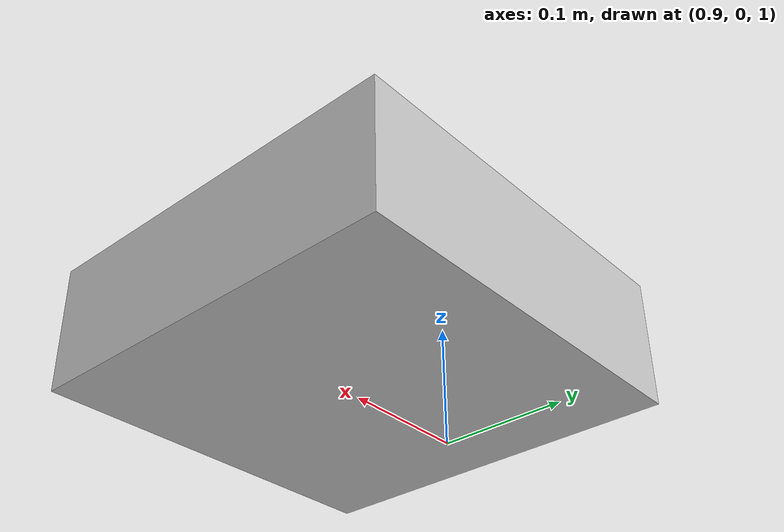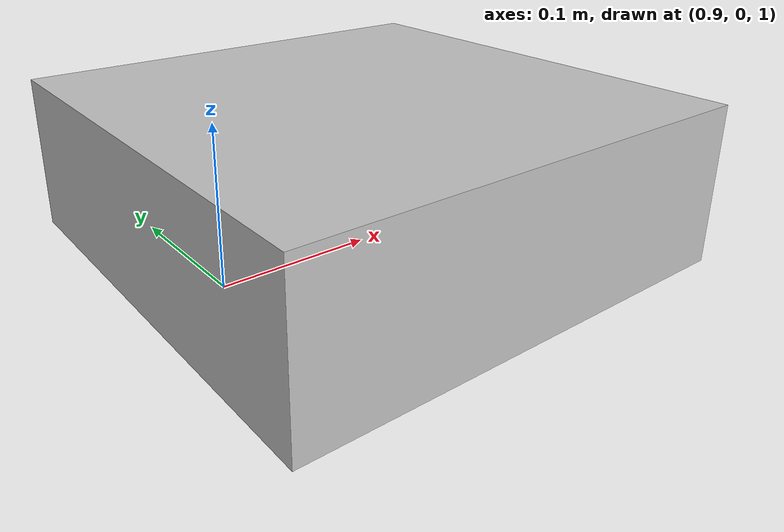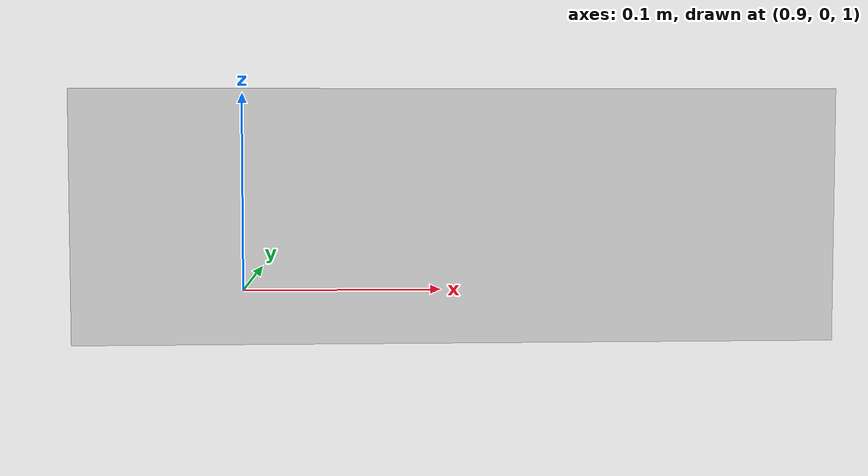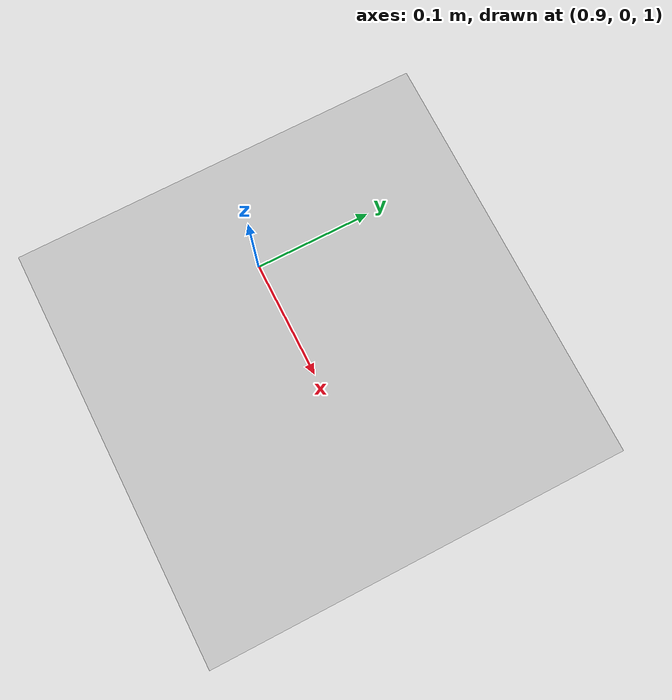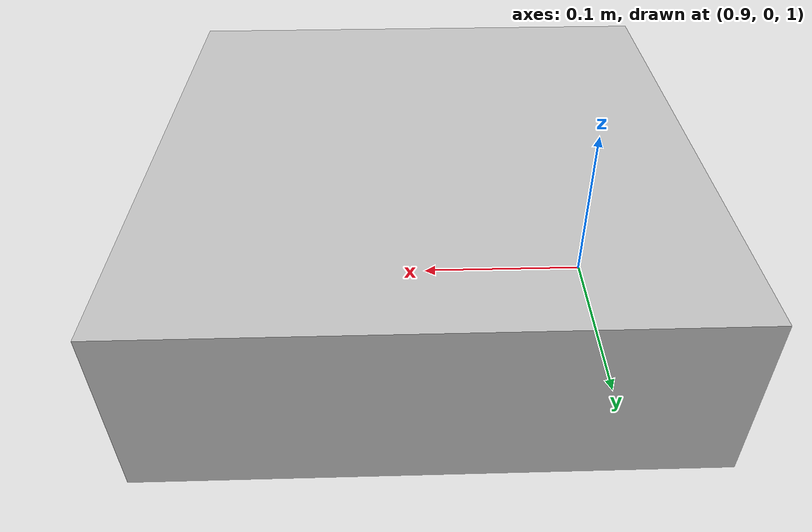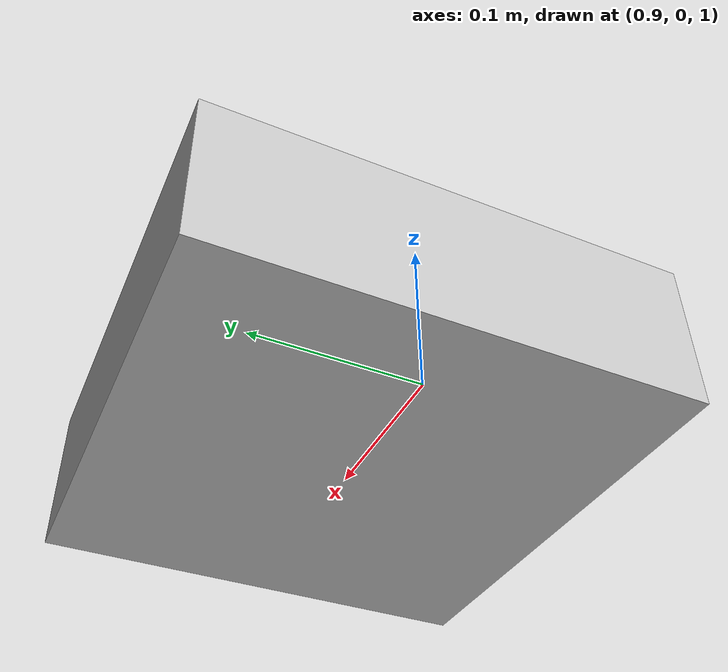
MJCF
<mujoco model="adam scene">

    <compiler angle="radian" inertiafromgeom="true" />
    <option timestep="0.017" iterations="100" tolerance="1e-10" impratio="20" cone="elliptic" density="1.2" viscosity="0.00002"/>
    <size nconmax="5000" njmax="5000"/>
    <statistic center="0.3 0 0.4" extent="0.8"/>

    <visual>
        <headlight diffuse="0.6 0.6 0.6" ambient="0.3 0.3 0.3" specular="0 0 0"/>
        <rgba haze="0.15 0.25 0.35 1"/>
        <global azimuth="0.0" elevation="-45.0"/>
        <map fogstart="3" fogend="5" znear="0.05"/>
        <quality shadowsize="2048"/>
        <scale framelength="0.1" framewidth="0.005" contactwidth="0.1" contactheight="0.005" forcewidth="0.01" />
    </visual>

    <asset>
        <texture type="skybox" builtin="gradient" rgb1="0.3 0.5 0.7" rgb2="0 0 0" width="512" height="3072"/>
        <texture type="2d" name="groundplane" builtin="checker" mark="edge" rgb1="0.2 0.3 0.4" rgb2="0.1 0.2 0.3" markrgb="0.8 0.8 0.8" width="300" height="300"/>
        <material name="groundplane" texture="groundplane" texuniform="true" texrepeat="5 5" reflectance="0.2"/>
    </asset>

    <worldbody>
        <light pos="1.0 1.0 5.0" dir="0 0 -1" directional="true"/>
        <geom name="floor" size="0 0 0.05" type="plane" material="groundplane"/>
    </worldbody>

    <include file="obstacles.xml"/>

</mujoco>

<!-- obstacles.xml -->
<mujoco model="obstacles">
<asset>

</asset>
<worldbody>
<body name="box" pos="1.0 0.0 1.05" quat="1.0 0.0 0.0 0.0">
<geom type="box" rgba="0.7686 0.7686 0.7686 1.0" size="0.15 0.15 0.05"/>
<freejoint name="box_freejoint"/>
<inertial mass="1.0" pos="0.0 0.0 0.0" diaginertia="0.001 0.001 0.001"/>
</body>
</worldbody>
</mujoco>
